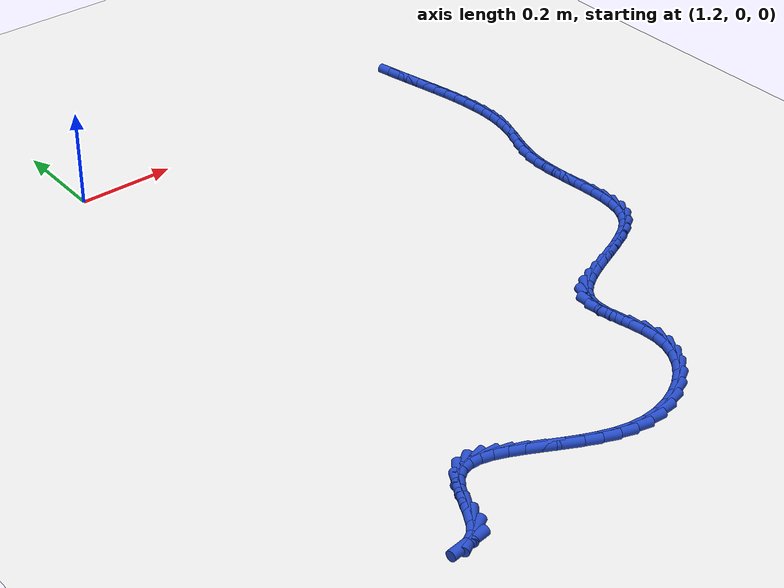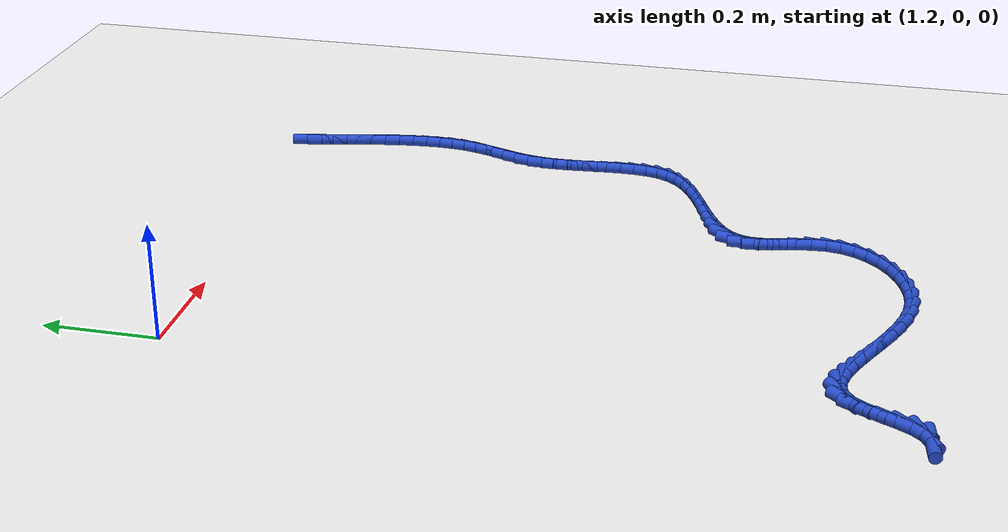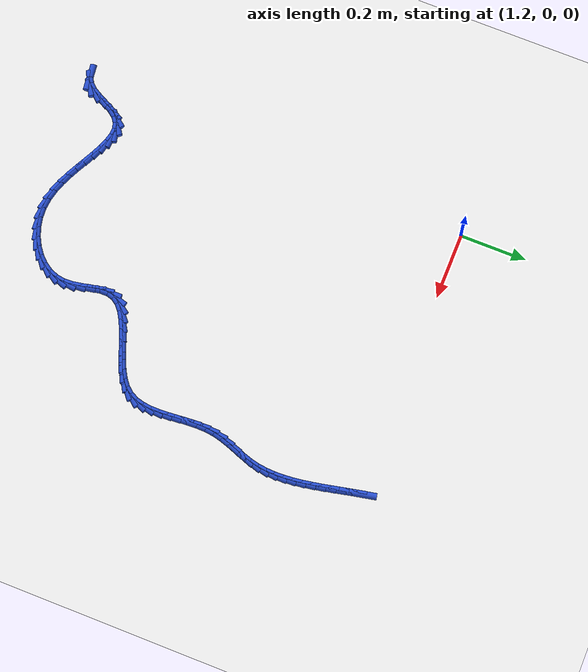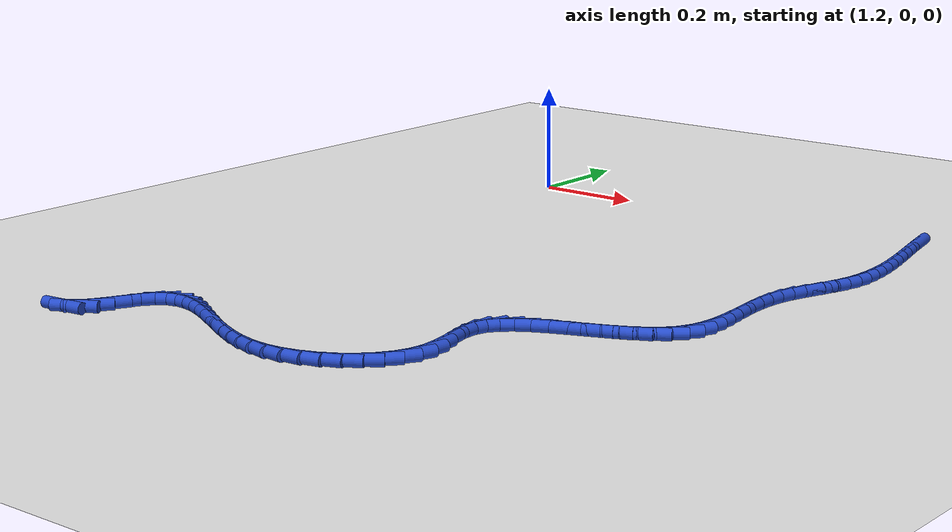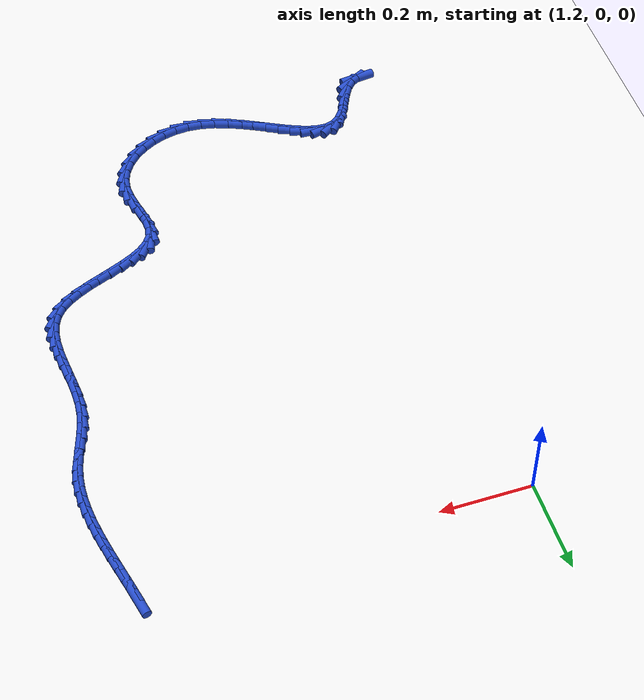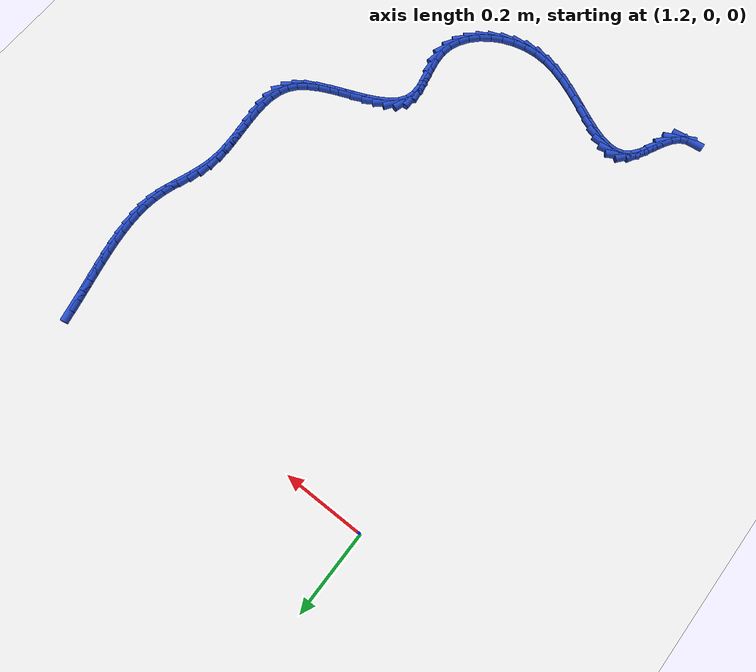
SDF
<sdf version="1.6">
 <world name="default">
  <model name="ground_plane">
   <static>1</static>
   <link name="link">
    <collision name="collision">
     <geometry><plane><normal>0 0 1</normal><size>100 100</size></plane></geometry>
     <surface><friction><ode><mu>100</mu><mu2>50</mu2></ode></friction></surface>
    </collision>
    <visual name="visual">
     <cast_shadows>0</cast_shadows>
     <geometry><plane><normal>0 0 1</normal><size>100 100</size></plane></geometry>
     <material>
      <script><uri>file://media/materials/scripts/gazebo.material</uri><name>Gazebo/WhiteGlow</name></script>
     </material>
    </visual>
   </link>
  </model>
  <model name="line">
   <link name="link_148">
    <pose>2.017800382569823 0.009495654440380627 0.01 0 1.57 -1.3729460588970346</pose>
    <collision name="collision">
     <geometry><cylinder><radius>0.01</radius><length>0.08</length></cylinder></geometry>
    </collision>
    <visual name="visual">
     <material>
      <script><name>Gazebo/Blue</name><uri>file://media/materials/scripts/gazebo.material</uri></script>
     </material>
     <geometry><cylinder><radius>0.01</radius><length>0.08</length></cylinder></geometry>
    </visual>
   </link>
   <link name="link_149">
    <pose>2.0234598385890576 -0.018734869019911067 0.01 0 1.57 -1.3613306190420364</pose>
    <collision name="collision">
     <geometry><cylinder><radius>0.01</radius><length>0.08</length></cylinder></geometry>
    </collision>
    <visual name="visual">
     <material>
      <script><name>Gazebo/Blue</name><uri>file://media/materials/scripts/gazebo.material</uri></script>
     </material>
     <geometry><cylinder><radius>0.01</radius><length>0.08</length></cylinder></geometry>
    </visual>
   </link>
   <link name="link_150">
    <pose>2.029508671569551 -0.04718872539603168 0.01 0 1.57 -1.3587938613832957</pose>
    <collision name="collision">
     <geometry><cylinder><radius>0.01</radius><length>0.08</length></cylinder></geometry>
    </collision>
    <visual name="visual">
     <material>
      <script><name>Gazebo/Blue</name><uri>file://media/materials/scripts/gazebo.material</uri></script>
     </material>
     <geometry><cylinder><radius>0.01</radius><length>0.08</length></cylinder></geometry>
    </visual>
   </link>
   <link name="link_151">
    <pose>2.0356602172283167 -0.07576909032841823 0.01 0 1.57 -1.365160858534324</pose>
    <collision name="collision">
     <geometry><cylinder><radius>0.01</radius><length>0.08</length></cylinder></geometry>
    </collision>
    <visual name="visual">
     <material>
      <script><name>Gazebo/Blue</name><uri>file://media/materials/scripts/gazebo.material</uri></script>
     </material>
     <geometry><cylinder><radius>0.01</radius><length>0.08</length></cylinder></geometry>
    </visual>
   </link>
   <link name="link_152">
    <pose>2.041627811282366 -0.10437913945750672 0.01 0 1.57 -1.3805392143595423</pose>
    <collision name="collision">
     <geometry><cylinder><radius>0.01</radius><length>0.08</length></cylinder></geometry>
    </collision>
    <visual name="visual">
     <material>
      <script><name>Gazebo/Blue</name><uri>file://media/materials/scripts/gazebo.material</uri></script>
     </material>
     <geometry><cylinder><radius>0.01</radius><length>0.08</length></cylinder></geometry>
    </visual>
   </link>
   <link name="link_153">
    <pose>2.0471247894487115 -0.132922048423736 0.01 0 1.57 -1.4053091407870473</pose>
    <collision name="collision">
     <geometry><cylinder><radius>0.01</radius><length>0.08</length></cylinder></geometry>
    </collision>
    <visual name="visual">
     <material>
      <script><name>Gazebo/Blue</name><uri>file://media/materials/scripts/gazebo.material</uri></script>
     </material>
     <geometry><cylinder><radius>0.01</radius><length>0.08</length></cylinder></geometry>
    </visual>
   </link>
   <link name="link_154">
    <pose>2.0518644874443672 -0.16130099286754207 0.01 0 1.57 -1.4401089009112422</pose>
    <collision name="collision">
     <geometry><cylinder><radius>0.01</radius><length>0.08</length></cylinder></geometry>
    </collision>
    <visual name="visual">
     <material>
      <script><name>Gazebo/Blue</name><uri>file://media/materials/scripts/gazebo.material</uri></script>
     </material>
     <geometry><cylinder><radius>0.01</radius><length>0.08</length></cylinder></geometry>
    </visual>
   </link>
   <link name="link_155">
    <pose>2.0555602409863445 -0.18941914842936192 0.01 0 1.57 -1.485803500004867</pose>
    <collision name="collision">
     <geometry><cylinder><radius>0.01</radius><length>0.08</length></cylinder></geometry>
    </collision>
    <visual name="visual">
     <material>
      <script><name>Gazebo/Blue</name><uri>file://media/materials/scripts/gazebo.material</uri></script>
     </material>
     <geometry><cylinder><radius>0.01</radius><length>0.08</length></cylinder></geometry>
    </visual>
   </link>
   <link name="link_156">
    <pose>2.0579253857916564 -0.21717969074963242 0.01 0 1.57 -1.543414725579245</pose>
    <collision name="collision">
     <geometry><cylinder><radius>0.01</radius><length>0.08</length></cylinder></geometry>
    </collision>
    <visual name="visual">
     <material>
      <script><name>Gazebo/Blue</name><uri>file://media/materials/scripts/gazebo.material</uri></script>
     </material>
     <geometry><cylinder><radius>0.01</radius><length>0.08</length></cylinder></geometry>
    </visual>
   </link>
   <link name="link_157">
    <pose>2.0586732575773157 -0.24448579546879076 0.01 0 1.57 1.5276136085072287</pose>
    <collision name="collision">
     <geometry><cylinder><radius>0.01</radius><length>0.08</length></cylinder></geometry>
    </collision>
    <visual name="visual">
     <material>
      <script><name>Gazebo/Blue</name><uri>file://media/materials/scripts/gazebo.material</uri></script>
     </material>
     <geometry><cylinder><radius>0.01</radius><length>0.08</length></cylinder></geometry>
    </visual>
   </link>
   <link name="link_158">
    <pose>2.057517192060334 -0.2712406382272736 0.01 0 1.57 1.4433000696053984</pose>
    <collision name="collision">
     <geometry><cylinder><radius>0.01</radius><length>0.08</length></cylinder></geometry>
    </collision>
    <visual name="visual">
     <material>
      <script><name>Gazebo/Blue</name><uri>file://media/materials/scripts/gazebo.material</uri></script>
     </material>
     <geometry><cylinder><radius>0.01</radius><length>0.08</length></cylinder></geometry>
    </visual>
   </link>
   <link name="link_159">
    <pose>2.054170524957725 -0.2973473946655181 0.01 0 1.57 1.3463200240852413</pose>
    <collision name="collision">
     <geometry><cylinder><radius>0.01</radius><length>0.08</length></cylinder></geometry>
    </collision>
    <visual name="visual">
     <material>
      <script><name>Gazebo/Blue</name><uri>file://media/materials/scripts/gazebo.material</uri></script>
     </material>
     <geometry><cylinder><radius>0.01</radius><length>0.08</length></cylinder></geometry>
    </visual>
   </link>
   <link name="link_160">
    <pose>2.0483773727711014 -0.3227198672613003 0.01 0 1.57 1.2638021758761153</pose>
    <collision name="collision">
     <geometry><cylinder><radius>0.01</radius><length>0.08</length></cylinder></geometry>
    </collision>
    <visual name="visual">
     <material>
      <script><name>Gazebo/Blue</name><uri>file://media/materials/scripts/gazebo.material</uri></script>
     </material>
     <geometry><cylinder><radius>0.01</radius><length>0.08</length></cylinder></geometry>
    </visual>
   </link>
   <link name="link_161">
    <pose>2.0405237361281414 -0.3474934642209858 0.01 0 1.57 1.221857671256901</pose>
    <collision name="collision">
     <geometry><cylinder><radius>0.01</radius><length>0.08</length></cylinder></geometry>
    </collision>
    <visual name="visual">
     <material>
      <script><name>Gazebo/Blue</name><uri>file://media/materials/scripts/gazebo.material</uri></script>
     </material>
     <geometry><cylinder><radius>0.01</radius><length>0.08</length></cylinder></geometry>
    </visual>
   </link>
   <link name="link_162">
    <pose>2.031602806030285 -0.37201322171914714 0.01 0 1.57 1.2213522235905452</pose>
    <collision name="collision">
     <geometry><cylinder><radius>0.01</radius><length>0.08</length></cylinder></geometry>
    </collision>
    <visual name="visual">
     <material>
      <script><name>Gazebo/Blue</name><uri>file://media/materials/scripts/gazebo.material</uri></script>
     </material>
     <geometry><cylinder><radius>0.01</radius><length>0.08</length></cylinder></geometry>
    </visual>
   </link>
   <link name="link_163">
    <pose>2.022631608796567 -0.3966324048967804 0.01 0 1.57 1.2617650946417789</pose>
    <collision name="collision">
     <geometry><cylinder><radius>0.01</radius><length>0.08</length></cylinder></geometry>
    </collision>
    <visual name="visual">
     <material>
      <script><name>Gazebo/Blue</name><uri>file://media/materials/scripts/gazebo.material</uri></script>
     </material>
     <geometry><cylinder><radius>0.01</radius><length>0.08</length></cylinder></geometry>
    </visual>
   </link>
   <link name="link_164">
    <pose>2.0146271707460213 -0.42170427889488193 0.01 0 1.57 1.3422061117479396</pose>
    <collision name="collision">
     <geometry><cylinder><radius>0.01</radius><length>0.08</length></cylinder></geometry>
    </collision>
    <visual name="visual">
     <material>
      <script><name>Gazebo/Blue</name><uri>file://media/materials/scripts/gazebo.material</uri></script>
     </material>
     <geometry><cylinder><radius>0.01</radius><length>0.08</length></cylinder></geometry>
    </visual>
   </link>
   <link name="link_165">
    <pose>2.0086065181976807 -0.4475821088544478 0.01 0 1.57 1.4549689697986457</pose>
    <collision name="collision">
     <geometry><cylinder><radius>0.01</radius><length>0.08</length></cylinder></geometry>
    </collision>
    <visual name="visual">
     <material>
      <script><name>Gazebo/Blue</name><uri>file://media/materials/scripts/gazebo.material</uri></script>
     </material>
     <geometry><cylinder><radius>0.01</radius><length>0.08</length></cylinder></geometry>
    </visual>
   </link>
   <link name="link_166">
    <pose>2.005466443915938 -0.474570718450018 0.01 0 1.57 1.5531214608874608</pose>
    <collision name="collision">
     <geometry><cylinder><radius>0.01</radius><length>0.08</length></cylinder></geometry>
    </collision>
    <visual name="visual">
     <material>
      <script><name>Gazebo/Blue</name><uri>file://media/materials/scripts/gazebo.material</uri></script>
     </material>
     <geometry><cylinder><radius>0.01</radius><length>0.08</length></cylinder></geometry>
    </visual>
   </link>
   <link name="link_167">
    <pose>2.004972408158559 -0.5025191234426603 0.01 0 1.57 -1.5253335779934243</pose>
    <collision name="collision">
     <geometry><cylinder><radius>0.01</radius><length>0.08</length></cylinder></geometry>
    </collision>
    <visual name="visual">
     <material>
      <script><name>Gazebo/Blue</name><uri>file://media/materials/scripts/gazebo.material</uri></script>
     </material>
     <geometry><cylinder><radius>0.01</radius><length>0.08</length></cylinder></geometry>
    </visual>
   </link>
   <link name="link_168">
    <pose>2.006269317387277 -0.5310263217345806 0.01 0 1.57 -1.4932760123005986</pose>
    <collision name="collision">
     <geometry><cylinder><radius>0.01</radius><length>0.08</length></cylinder></geometry>
    </collision>
    <visual name="visual">
     <material>
      <script><name>Gazebo/Blue</name><uri>file://media/materials/scripts/gazebo.material</uri></script>
     </material>
     <geometry><cylinder><radius>0.01</radius><length>0.08</length></cylinder></geometry>
    </visual>
   </link>
   <link name="link_169">
    <pose>2.0084956986688023 -0.5596887410033007 0.01 0 1.57 -1.4902230986551541</pose>
    <collision name="collision">
     <geometry><cylinder><radius>0.01</radius><length>0.08</length></cylinder></geometry>
    </collision>
    <visual name="visual">
     <material>
      <script><name>Gazebo/Blue</name><uri>file://media/materials/scripts/gazebo.material</uri></script>
     </material>
     <geometry><cylinder><radius>0.01</radius><length>0.08</length></cylinder></geometry>
    </visual>
   </link>
   <link name="link_170">
    <pose>2.0107900790698467 -0.5881028089263446 0.01 0 1.57 -1.5167858425235545</pose>
    <collision name="collision">
     <geometry><cylinder><radius>0.01</radius><length>0.08</length></cylinder></geometry>
    </collision>
    <visual name="visual">
     <material>
      <script><name>Gazebo/Blue</name><uri>file://media/materials/scripts/gazebo.material</uri></script>
     </material>
     <geometry><cylinder><radius>0.01</radius><length>0.08</length></cylinder></geometry>
    </visual>
   </link>
   <link name="link_171">
    <pose>2.0122909856571205 -0.6158649531812334 0.01 0 1.57 1.5650285325706785</pose>
    <collision name="collision">
     <geometry><cylinder><radius>0.01</radius><length>0.08</length></cylinder></geometry>
    </collision>
    <visual name="visual">
     <material>
      <script><name>Gazebo/Blue</name><uri>file://media/materials/scripts/gazebo.material</uri></script>
     </material>
     <geometry><cylinder><radius>0.01</radius><length>0.08</length></cylinder></geometry>
    </visual>
   </link>
   <link name="link_172">
    <pose>2.0121369454973355 -0.64257160144549 0.01 0 1.57 1.4654172138941453</pose>
    <collision name="collision">
     <geometry><cylinder><radius>0.01</radius><length>0.08</length></cylinder></geometry>
    </collision>
    <visual name="visual">
     <material>
      <script><name>Gazebo/Blue</name><uri>file://media/materials/scripts/gazebo.material</uri></script>
     </material>
     <geometry><cylinder><radius>0.01</radius><length>0.08</length></cylinder></geometry>
    </visual>
   </link>
   <link name="link_173">
    <pose>2.0094664856572013 -0.6678191813966361 0.01 0 1.57 1.317699699164162</pose>
    <collision name="collision">
     <geometry><cylinder><radius>0.01</radius><length>0.08</length></cylinder></geometry>
    </collision>
    <visual name="visual">
     <material>
      <script><name>Gazebo/Blue</name><uri>file://media/materials/scripts/gazebo.material</uri></script>
     </material>
     <geometry><cylinder><radius>0.01</radius><length>0.08</length></cylinder></geometry>
    </visual>
   </link>
   <link name="link_174">
    <pose>2.0034181332034304 -0.6912041207121944 0.01 0 1.57 1.1174917776075892</pose>
    <collision name="collision">
     <geometry><cylinder><radius>0.01</radius><length>0.08</length></cylinder></geometry>
    </collision>
    <visual name="visual">
     <material>
      <script><name>Gazebo/Blue</name><uri>file://media/materials/scripts/gazebo.material</uri></script>
     </material>
     <geometry><cylinder><radius>0.01</radius><length>0.08</length></cylinder></geometry>
    </visual>
   </link>
   <link name="link_175">
    <pose>1.9931304152027327 -0.712322847069687 0.01 0 1.57 0.8776205820475553</pose>
    <collision name="collision">
     <geometry><cylinder><radius>0.01</radius><length>0.08</length></cylinder></geometry>
    </collision>
    <visual name="visual">
     <material>
      <script><name>Gazebo/Blue</name><uri>file://media/materials/scripts/gazebo.material</uri></script>
     </material>
     <geometry><cylinder><radius>0.01</radius><length>0.08</length></cylinder></geometry>
    </visual>
   </link>
   <link name="link_176">
    <pose>1.977787168940606 -0.7307933498264872 0.01 0 1.57 0.6663492489248648</pose>
    <collision name="collision">
     <geometry><cylinder><radius>0.01</radius><length>0.08</length></cylinder></geometry>
    </collision>
    <visual name="visual">
     <material>
      <script><name>Gazebo/Blue</name><uri>file://media/materials/scripts/gazebo.material</uri></script>
     </material>
     <geometry><cylinder><radius>0.01</radius><length>0.08</length></cylinder></geometry>
    </visual>
   </link>
   <link name="link_177">
    <pose>1.957555955762581 -0.7467017410683985 0.01 0 1.57 0.5245225913944088</pose>
    <collision name="collision">
     <geometry><cylinder><radius>0.01</radius><length>0.08</length></cylinder></geometry>
    </collision>
    <visual name="visual">
     <material>
      <script><name>Gazebo/Blue</name><uri>file://media/materials/scripts/gazebo.material</uri></script>
     </material>
     <geometry><cylinder><radius>0.01</radius><length>0.08</length></cylinder></geometry>
    </visual>
   </link>
   <link name="link_178">
    <pose>1.933556664849447 -0.760587315153279 0.01 0 1.57 0.43673044588728777</pose>
    <collision name="collision">
     <geometry><cylinder><radius>0.01</radius><length>0.08</length></cylinder></geometry>
    </collision>
    <visual name="visual">
     <material>
      <script><name>Gazebo/Blue</name><uri>file://media/materials/scripts/gazebo.material</uri></script>
     </material>
     <geometry><cylinder><radius>0.01</radius><length>0.08</length></cylinder></geometry>
    </visual>
   </link>
   <link name="link_179">
    <pose>1.9069482142847718 -0.773007939042015 0.01 0 1.57 0.38938634324115856</pose>
    <collision name="collision">
     <geometry><cylinder><radius>0.01</radius><length>0.08</length></cylinder></geometry>
    </collision>
    <visual name="visual">
     <material>
      <script><name>Gazebo/Blue</name><uri>file://media/materials/scripts/gazebo.material</uri></script>
     </material>
     <geometry><cylinder><radius>0.01</radius><length>0.08</length></cylinder></geometry>
    </visual>
   </link>
   <link name="link_180">
    <pose>1.8788895221521216 -0.7845214796954924 0.01 0 1.57 0.37515284369799395</pose>
    <collision name="collision">
     <geometry><cylinder><radius>0.01</radius><length>0.08</length></cylinder></geometry>
    </collision>
    <visual name="visual">
     <material>
      <script><name>Gazebo/Blue</name><uri>file://media/materials/scripts/gazebo.material</uri></script>
     </material>
     <geometry><cylinder><radius>0.01</radius><length>0.08</length></cylinder></geometry>
    </visual>
   </link>
   <link name="link_181">
    <pose>1.8505395065350636 -0.7956858040745973 0.01 0 1.57 0.3923693093814369</pose>
    <collision name="collision">
     <geometry><cylinder><radius>0.01</radius><length>0.08</length></cylinder></geometry>
    </collision>
    <visual name="visual">
     <material>
      <script><name>Gazebo/Blue</name><uri>file://media/materials/scripts/gazebo.material</uri></script>
     </material>
     <geometry><cylinder><radius>0.01</radius><length>0.08</length></cylinder></geometry>
    </visual>
   </link>
   <link name="link_182">
    <pose>1.8230570855171653 -0.8070587791402161 0.01 0 1.57 0.44498366276566975</pose>
    <collision name="collision">
     <geometry><cylinder><radius>0.01</radius><length>0.08</length></cylinder></geometry>
    </collision>
    <visual name="visual">
     <material>
      <script><name>Gazebo/Blue</name><uri>file://media/materials/scripts/gazebo.material</uri></script>
     </material>
     <geometry><cylinder><radius>0.01</radius><length>0.08</length></cylinder></geometry>
    </visual>
   </link>
   <link name="link_183">
    <pose>1.797601177181993 -0.8191982718532346 0.01 0 1.57 0.5437669270968423</pose>
    <collision name="collision">
     <geometry><cylinder><radius>0.01</radius><length>0.08</length></cylinder></geometry>
    </collision>
    <visual name="visual">
     <material>
      <script><name>Gazebo/Blue</name><uri>file://media/materials/scripts/gazebo.material</uri></script>
     </material>
     <geometry><cylinder><radius>0.01</radius><length>0.08</length></cylinder></geometry>
    </visual>
   </link>
   <link name="link_184">
    <pose>1.7753306996131146 -0.8326621491745386 0.01 0 1.57 0.7080109464048736</pose>
    <collision name="collision">
     <geometry><cylinder><radius>0.01</radius><length>0.08</length></cylinder></geometry>
    </collision>
    <visual name="visual">
     <material>
      <script><name>Gazebo/Blue</name><uri>file://media/materials/scripts/gazebo.material</uri></script>
     </material>
     <geometry><cylinder><radius>0.01</radius><length>0.08</length></cylinder></geometry>
    </visual>
   </link>
   <link name="link_185">
    <pose>1.7574045708940955 -0.8480082780650147 0.01 0 1.57 0.961109224216519</pose>
    <collision name="collision">
     <geometry><cylinder><radius>0.01</radius><length>0.08</length></cylinder></geometry>
    </collision>
    <visual name="visual">
     <material>
      <script><name>Gazebo/Blue</name><uri>file://media/materials/scripts/gazebo.material</uri></script>
     </material>
     <geometry><cylinder><radius>0.01</radius><length>0.08</length></cylinder></geometry>
    </visual>
   </link>
   <link name="link_186">
    <pose>1.7449817091085047 -0.8657945254855494 0.01 0 1.57 1.2984054269913157</pose>
    <collision name="collision">
     <geometry><cylinder><radius>0.01</radius><length>0.08</length></cylinder></geometry>
    </collision>
    <visual name="visual">
     <material>
      <script><name>Gazebo/Blue</name><uri>file://media/materials/scripts/gazebo.material</uri></script>
     </material>
     <geometry><cylinder><radius>0.01</radius><length>0.08</length></cylinder></geometry>
    </visual>
   </link>
   <link name="link_187">
    <pose>1.7391803701316642 -0.8865630017554794 0.01 0 1.57 -1.55243729060944</pose>
    <collision name="collision">
     <geometry><cylinder><radius>0.01</radius><length>0.08</length></cylinder></geometry>
    </collision>
    <visual name="visual">
     <material>
      <script><name>Gazebo/Blue</name><uri>file://media/materials/scripts/gazebo.material</uri></script>
     </material>
     <geometry><cylinder><radius>0.01</radius><length>0.08</length></cylinder></geometry>
    </visual>
   </link>
   <link name="link_188">
    <pose>1.7396157185162746 -0.9102733679812557 0.01 0 1.57 -1.403153093427688</pose>
    <collision name="collision">
     <geometry><cylinder><radius>0.01</radius><length>0.08</length></cylinder></geometry>
    </collision>
    <visual name="visual">
     <material>
      <script><name>Gazebo/Blue</name><uri>file://media/materials/scripts/gazebo.material</uri></script>
     </material>
     <geometry><cylinder><radius>0.01</radius><length>0.08</length></cylinder></geometry>
    </visual>
   </link>
   <link name="link_189">
    <pose>1.7439941215876287 -0.9361456246606032 0.01 0 1.57 -1.3570819008870392</pose>
    <collision name="collision">
     <geometry><cylinder><radius>0.01</radius><length>0.08</length></cylinder></geometry>
    </collision>
    <visual name="visual">
     <material>
      <script><name>Gazebo/Blue</name><uri>file://media/materials/scripts/gazebo.material</uri></script>
     </material>
     <geometry><cylinder><radius>0.01</radius><length>0.08</length></cylinder></geometry>
    </visual>
   </link>
   <link name="link_190">
    <pose>1.7498986882039613 -0.9633520095265774 0.01 0 1.57 -1.3918107219381581</pose>
    <collision name="collision">
     <geometry><cylinder><radius>0.01</radius><length>0.08</length></cylinder></geometry>
    </collision>
    <visual name="visual">
     <material>
      <script><name>Gazebo/Blue</name><uri>file://media/materials/scripts/gazebo.material</uri></script>
     </material>
     <geometry><cylinder><radius>0.01</radius><length>0.08</length></cylinder></geometry>
    </visual>
   </link>
   <link name="link_191">
    <pose>1.754912527223509 -0.9910647603122331 0.01 0 1.57 -1.5085862364417066</pose>
    <collision name="collision">
     <geometry><cylinder><radius>0.01</radius><length>0.08</length></cylinder></geometry>
    </collision>
    <visual name="visual">
     <material>
      <script><name>Gazebo/Blue</name><uri>file://media/materials/scripts/gazebo.material</uri></script>
     </material>
     <geometry><cylinder><radius>0.01</radius><length>0.08</length></cylinder></geometry>
    </visual>
   </link>
   <link name="link_192">
    <pose>1.7566187475045065 -1.0184561147506257 0.01 0 1.57 1.4266476422237409</pose>
    <collision name="collision">
     <geometry><cylinder><radius>0.01</radius><length>0.08</length></cylinder></geometry>
    </collision>
    <visual name="visual">
     <material>
      <script><name>Gazebo/Blue</name><uri>file://media/materials/scripts/gazebo.material</uri></script>
     </material>
     <geometry><cylinder><radius>0.01</radius><length>0.08</length></cylinder></geometry>
    </visual>
   </link>
   <link name="link_193">
    <pose>1.7528054286280574 -1.044726698552293 0.01 0 1.57 1.1970370547039568</pose>
    <collision name="collision">
     <geometry><cylinder><radius>0.01</radius><length>0.08</length></cylinder></geometry>
    </collision>
    <visual name="visual">
     <material>
      <script><name>Gazebo/Blue</name><uri>file://media/materials/scripts/gazebo.material</uri></script>
     </material>
     <geometry><cylinder><radius>0.01</radius><length>0.08</length></cylinder></geometry>
    </visual>
   </link>
   <link name="link_194">
    <pose>1.7431525603430666 -1.0693391626696591 0.01 0 1.57 0.9904567019967951</pose>
    <collision name="collision">
     <geometry><cylinder><radius>0.01</radius><length>0.08</length></cylinder></geometry>
    </collision>
    <visual name="visual">
     <material>
      <script><name>Gazebo/Blue</name><uri>file://media/materials/scripts/gazebo.material</uri></script>
     </material>
     <geometry><cylinder><radius>0.01</radius><length>0.08</length></cylinder></geometry>
    </visual>
   </link>
   <link name="link_195">
    <pose>1.728361978140263 -1.0918976813590768 0.01 0 1.57 0.8081179630755506</pose>
    <collision name="collision">
     <geometry><cylinder><radius>0.01</radius><length>0.08</length></cylinder></geometry>
    </collision>
    <visual name="visual">
     <material>
      <script><name>Gazebo/Blue</name><uri>file://media/materials/scripts/gazebo.material</uri></script>
     </material>
     <geometry><cylinder><radius>0.01</radius><length>0.08</length></cylinder></geometry>
    </visual>
   </link>
   <link name="link_196">
    <pose>1.709145495250584 -1.112007810771152 0.01 0 1.57 0.6454343982060766</pose>
    <collision name="collision">
     <geometry><cylinder><radius>0.01</radius><length>0.08</length></cylinder></geometry>
    </collision>
    <visual name="visual">
     <material>
      <script><name>Gazebo/Blue</name><uri>file://media/materials/scripts/gazebo.material</uri></script>
     </material>
     <geometry><cylinder><radius>0.01</radius><length>0.08</length></cylinder></geometry>
    </visual>
   </link>
   <link name="link_197">
    <pose>1.6862149249049665 -1.1292751070564897 0.01 0 1.57 0.49591762565605035</pose>
    <collision name="collision">
     <geometry><cylinder><radius>0.01</radius><length>0.08</length></cylinder></geometry>
    </collision>
    <visual name="visual">
     <material>
      <script><name>Gazebo/Blue</name><uri>file://media/materials/scripts/gazebo.material</uri></script>
     </material>
     <geometry><cylinder><radius>0.01</radius><length>0.08</length></cylinder></geometry>
    </visual>
   </link>
   <link name="link_198">
    <pose>1.6602820803343494 -1.1433051263656968 0.01 0 1.57 0.35299782954661196</pose>
    <collision name="collision">
     <geometry><cylinder><radius>0.01</radius><length>0.08</length></cylinder></geometry>
    </collision>
    <visual name="visual">
     <material>
      <script><name>Gazebo/Blue</name><uri>file://media/materials/scripts/gazebo.material</uri></script>
     </material>
     <geometry><cylinder><radius>0.01</radius><length>0.08</length></cylinder></geometry>
    </visual>
   </link>
   <link name="link_199">
    <pose>1.6320587747696698 -1.1537034248493794 0.01 0 1.57 0.21064417668404725</pose>
    <collision name="collision">
     <geometry><cylinder><radius>0.01</radius><length>0.08</length></cylinder></geometry>
    </collision>
    <visual name="visual">
     <material>
      <script><name>Gazebo/Blue</name><uri>file://media/materials/scripts/gazebo.material</uri></script>
     </material>
     <geometry><cylinder><radius>0.01</radius><length>0.08</length></cylinder></geometry>
    </visual>
   </link>
   <link name="link_200">
    <pose>1.6022568214418655 -1.160075558658143 0.01 0 1.57 0.06354661686136791</pose>
    <collision name="collision">
     <geometry><cylinder><radius>0.01</radius><length>0.08</length></cylinder></geometry>
    </collision>
    <visual name="visual">
     <material>
      <script><name>Gazebo/Blue</name><uri>file://media/materials/scripts/gazebo.material</uri></script>
     </material>
     <geometry><cylinder><radius>0.01</radius><length>0.08</length></cylinder></geometry>
    </visual>
   </link>
   <link name="link_201">
    <pose>1.5715880335818746 -1.162027083942594 0.01 0 1.57 -0.09077455859925726</pose>
    <collision name="collision">
     <geometry><cylinder><radius>0.01</radius><length>0.08</length></cylinder></geometry>
    </collision>
    <visual name="visual">
     <material>
      <script><name>Gazebo/Blue</name><uri>file://media/materials/scripts/gazebo.material</uri></script>
     </material>
     <geometry><cylinder><radius>0.01</radius><length>0.08</length></cylinder></geometry>
    </visual>
   </link>
   <link name="link_202">
    <pose>1.5407426767492405 -1.1592193942447055 0.01 0 1.57 -0.22888986471361808</pose>
    <collision name="collision">
     <geometry><cylinder><radius>0.01</radius><length>0.08</length></cylinder></geometry>
    </collision>
    <visual name="visual">
     <material>
      <script><name>Gazebo/Blue</name><uri>file://media/materials/scripts/gazebo.material</uri></script>
     </material>
     <geometry><cylinder><radius>0.01</radius><length>0.08</length></cylinder></geometry>
    </visual>
   </link>
   <link name="link_203">
    <pose>1.5101139309115885 -1.1520837335539846 0.01 0 1.57 -0.33340812479575527</pose>
    <collision name="collision">
     <geometry><cylinder><radius>0.01</radius><length>0.08</length></cylinder></geometry>
    </collision>
    <visual name="visual">
     <material>
      <script><name>Gazebo/Blue</name><uri>file://media/materials/scripts/gazebo.material</uri></script>
     </material>
     <geometry><cylinder><radius>0.01</radius><length>0.08</length></cylinder></geometry>
    </visual>
   </link>
   <link name="link_204">
    <pose>1.4798785795237441 -1.1416121032872797 0.01 0 1.57 -0.40737079705994533</pose>
    <collision name="collision">
     <geometry><cylinder><radius>0.01</radius><length>0.08</length></cylinder></geometry>
    </collision>
    <visual name="visual">
     <material>
      <script><name>Gazebo/Blue</name><uri>file://media/materials/scripts/gazebo.material</uri></script>
     </material>
     <geometry><cylinder><radius>0.01</radius><length>0.08</length></cylinder></geometry>
    </visual>
   </link>
   <link name="link_205">
    <pose>1.4502085059633365 -1.128809202638525 0.01 0 1.57 -0.45428659477492395</pose>
    <collision name="collision">
     <geometry><cylinder><radius>0.01</radius><length>0.08</length></cylinder></geometry>
    </collision>
    <visual name="visual">
     <material>
      <script><name>Gazebo/Blue</name><uri>file://media/materials/scripts/gazebo.material</uri></script>
     </material>
     <geometry><cylinder><radius>0.01</radius><length>0.08</length></cylinder></geometry>
    </visual>
   </link>
   <link name="link_206">
    <pose>1.4212755936079953 -1.114679730801655 0.01 0 1.57 -0.4761126564951598</pose>
    <collision name="collision">
     <geometry><cylinder><radius>0.01</radius><length>0.08</length></cylinder></geometry>
    </collision>
    <visual name="visual">
     <material>
      <script><name>Gazebo/Blue</name><uri>file://media/materials/scripts/gazebo.material</uri></script>
     </material>
     <geometry><cylinder><radius>0.01</radius><length>0.08</length></cylinder></geometry>
    </visual>
   </link>
   <link name="link_207">
    <pose>1.3932517258353507 -1.1002283869706035 0.01 0 1.57 -0.472428681827411</pose>
    <collision name="collision">
     <geometry><cylinder><radius>0.01</radius><length>0.08</length></cylinder></geometry>
    </collision>
    <visual name="visual">
     <material>
      <script><name>Gazebo/Blue</name><uri>file://media/materials/scripts/gazebo.material</uri></script>
     </material>
     <geometry><cylinder><radius>0.01</radius><length>0.08</length></cylinder></geometry>
    </visual>
   </link>
   <link name="link_208">
    <pose>1.3663087860230312 -1.0864598703393051 0.01 0 1.57 -0.4395722432391486</pose>
    <collision name="collision">
     <geometry><cylinder><radius>0.01</radius><length>0.08</length></cylinder></geometry>
    </collision>
    <visual name="visual">
     <material>
      <script><name>Gazebo/Blue</name><uri>file://media/materials/scripts/gazebo.material</uri></script>
     </material>
     <geometry><cylinder><radius>0.01</radius><length>0.08</length></cylinder></geometry>
    </visual>
   </link>
   <link name="link_209">
    <pose>1.3406186575486672 -1.0743788801016938 0.01 0 1.57 -0.369179302327304</pose>
    <collision name="collision">
     <geometry><cylinder><radius>0.01</radius><length>0.08</length></cylinder></geometry>
    </collision>
    <visual name="visual">
     <material>
      <script><name>Gazebo/Blue</name><uri>file://media/materials/scripts/gazebo.material</uri></script>
     </material>
     <geometry><cylinder><radius>0.01</radius><length>0.08</length></cylinder></geometry>
    </visual>
   </link>
   <link name="link_210">
    <pose>1.3163532237898883 -1.064990115451704 0.01 0 1.57 -0.24600083363663275</pose>
    <collision name="collision">
     <geometry><cylinder><radius>0.01</radius><length>0.08</length></cylinder></geometry>
    </collision>
    <visual name="visual">
     <material>
      <script><name>Gazebo/Blue</name><uri>file://media/materials/scripts/gazebo.material</uri></script>
     </material>
     <geometry><cylinder><radius>0.01</radius><length>0.08</length></cylinder></geometry>
    </visual>
   </link>
   <link name="link_211">
    <pose>1.293684368124324 -1.0592982755832698 0.01 0 1.57 -0.0473424558496981</pose>
    <collision name="collision">
     <geometry><cylinder><radius>0.01</radius><length>0.08</length></cylinder></geometry>
    </collision>
    <visual name="visual">
     <material>
      <script><name>Gazebo/Blue</name><uri>file://media/materials/scripts/gazebo.material</uri></script>
     </material>
     <geometry><cylinder><radius>0.01</radius><length>0.08</length></cylinder></geometry>
    </visual>
   </link>
   <link name="link_212">
    <pose>1.2727839739296034 -1.0583080596903254 0.01 0 1.57 0.24379166484261605</pose>
    <collision name="collision">
     <geometry><cylinder><radius>0.01</radius><length>0.08</length></cylinder></geometry>
    </collision>
    <visual name="visual">
     <material>
      <script><name>Gazebo/Blue</name><uri>file://media/materials/scripts/gazebo.material</uri></script>
     </material>
     <geometry><cylinder><radius>0.01</radius><length>0.08</length></cylinder></geometry>
    </visual>
   </link>
   <link name="link_213">
    <pose>1.253823924583357 -1.0630241669668052 0.01 0 1.57 0.5959828817321183</pose>
    <collision name="collision">
     <geometry><cylinder><radius>0.01</radius><length>0.08</length></cylinder></geometry>
    </collision>
    <visual name="visual">
     <material>
      <script><name>Gazebo/Blue</name><uri>file://media/materials/scripts/gazebo.material</uri></script>
     </material>
     <geometry><cylinder><radius>0.01</radius><length>0.08</length></cylinder></geometry>
    </visual>
   </link>
   <link name="link_214">
    <pose>1.2369761034632134 -1.0744512966066435 0.01 0 1.57 0.9085593030324964</pose>
    <collision name="collision">
     <geometry><cylinder><radius>0.01</radius><length>0.08</length></cylinder></geometry>
    </collision>
    <visual name="visual">
     <material>
      <script><name>Gazebo/Blue</name><uri>file://media/materials/scripts/gazebo.material</uri></script>
     </material>
     <geometry><cylinder><radius>0.01</radius><length>0.08</length></cylinder></geometry>
    </visual>
   </link>
   <link name="link_215">
    <pose>1.2223239491944464 -1.0932434429743902 0.01 0 1.57 1.0676595977224144</pose>
    <collision name="collision">
     <geometry><cylinder><radius>0.01</radius><length>0.08</length></cylinder></geometry>
    </collision>
    <visual name="visual">
     <material>
      <script><name>Gazebo/Blue</name><uri>file://media/materials/scripts/gazebo.material</uri></script>
     </material>
     <geometry><cylinder><radius>0.01</radius><length>0.08</length></cylinder></geometry>
    </visual>
   </link>
   <link name="link_216">
    <pose>1.2092019875739048 -1.1170849799797853 0.01 0 1.57 1.1041598924826008</pose>
    <collision name="collision">
     <geometry><cylinder><radius>0.01</radius><length>0.08</length></cylinder></geometry>
    </collision>
    <visual name="visual">
     <material>
      <script><name>Gazebo/Blue</name><uri>file://media/materials/scripts/gazebo.material</uri></script>
     </material>
     <geometry><cylinder><radius>0.01</radius><length>0.08</length></cylinder></geometry>
    </visual>
   </link>
   <link name="link_217">
    <pose>1.1965678107124342 -1.1421656483235139 0.01 0 1.57 1.040478747366519</pose>
    <collision name="collision">
     <geometry><cylinder><radius>0.01</radius><length>0.08</length></cylinder></geometry>
    </collision>
    <visual name="visual">
     <material>
      <script><name>Gazebo/Blue</name><uri>file://media/materials/scripts/gazebo.material</uri></script>
     </material>
     <geometry><cylinder><radius>0.01</radius><length>0.08</length></cylinder></geometry>
    </visual>
   </link>
   <link name="link_218">
    <pose>1.1833761454190352 -1.1646638270915917 0.01 0 1.57 0.8340757586274993</pose>
    <collision name="collision">
     <geometry><cylinder><radius>0.01</radius><length>0.08</length></cylinder></geometry>
    </collision>
    <visual name="visual">
     <material>
      <script><name>Gazebo/Blue</name><uri>file://media/materials/scripts/gazebo.material</uri></script>
     </material>
     <geometry><cylinder><radius>0.01</radius><length>0.08</length></cylinder></geometry>
    </visual>
   </link>
   <link name="link_219">
    <pose>1.1686263927984943 -1.1809242750964468 0.01 0 1.57 0.4882117503286709</pose>
    <collision name="collision">
     <geometry><cylinder><radius>0.01</radius><length>0.08</length></cylinder></geometry>
    </collision>
    <visual name="visual">
     <material>
      <script><name>Gazebo/Blue</name><uri>file://media/materials/scripts/gazebo.material</uri></script>
     </material>
     <geometry><cylinder><radius>0.01</radius><length>0.08</length></cylinder></geometry>
    </visual>
   </link>
   <link name="link_220">
    <pose>1.1519818012658167 -1.1897641064927487 0.01 0 1.57 0.11549327655144268</pose>
    <collision name="collision">
     <geometry><cylinder><radius>0.01</radius><length>0.08</length></cylinder></geometry>
    </collision>
    <visual name="visual">
     <material>
      <script><name>Gazebo/Blue</name><uri>file://media/materials/scripts/gazebo.material</uri></script>
     </material>
     <geometry><cylinder><radius>0.01</radius><length>0.08</length></cylinder></geometry>
    </visual>
   </link>
  </model>
 </world>
</sdf>
